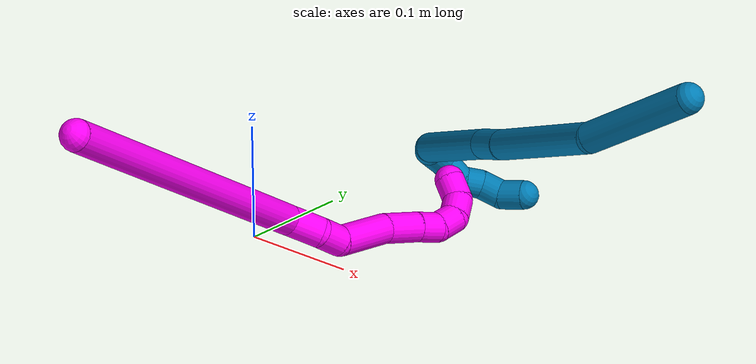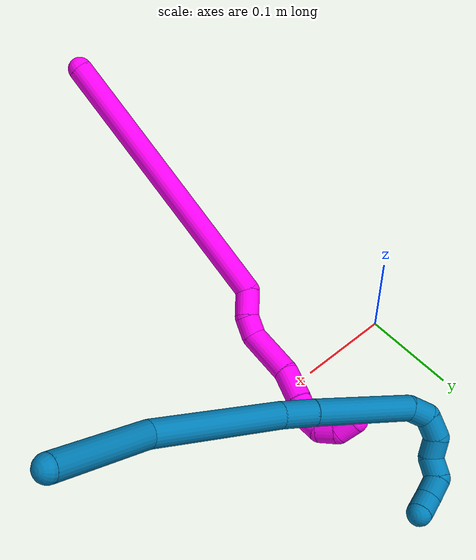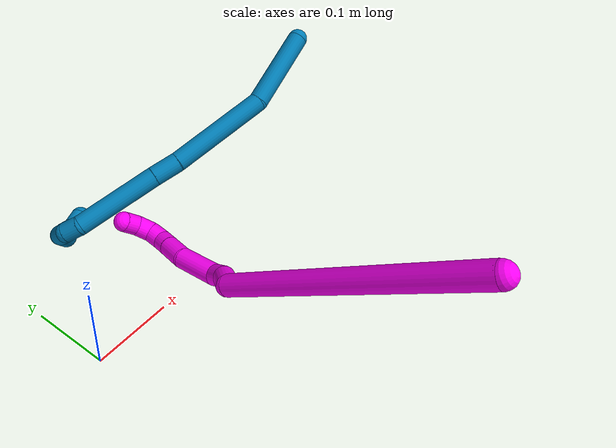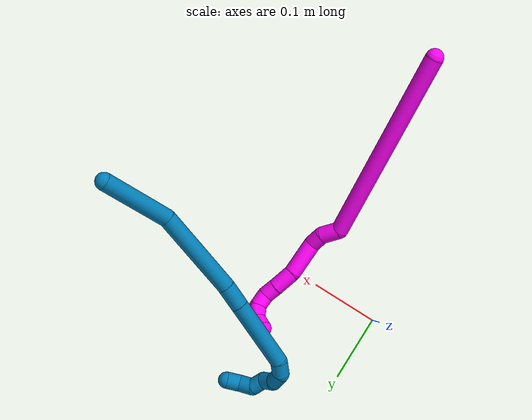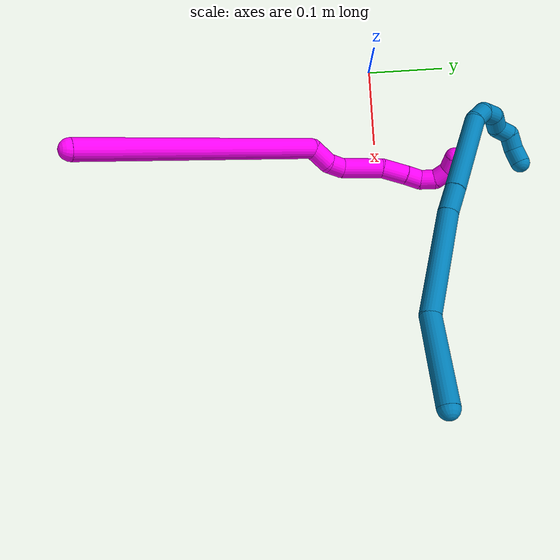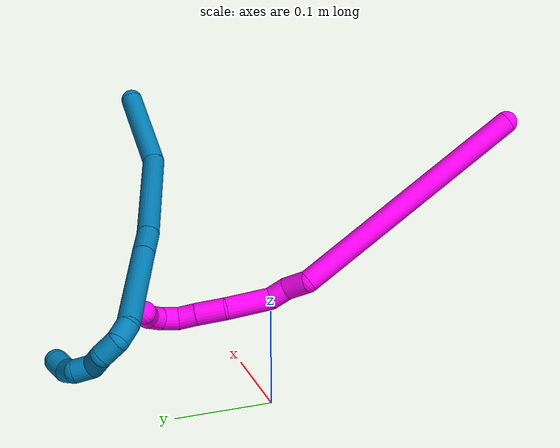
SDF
<sdf version="1.7">
 <world name="default">
  <model name="9">
   <static>0</static>
   <link name="9">
    <collision name="collision-cylinder-e_1_1_4">
     <pose>-0.00485 -0.003652 -0.051204 3.07039 -0.094205 -1.84753</pose>
     <geometry><cylinder><radius>0.0125</radius><length>0.103126</length></cylinder></geometry>
     <surface>
      <friction><ode><mu>1.16</mu><mu2>1.16</mu2><slip1>0</slip1><slip2>0</slip2></ode></friction>
      <contact><ode><kp>1e+06</kp><kd>1</kd><max_vel>0</max_vel><min_depth>0.001</min_depth></ode></contact>
     </surface>
    </collision>
    <visual name="visual-cylinder-e_1_1_4">
     <pose>-0.00485 -0.003652 -0.051204 3.07039 -0.094205 -1.84753</pose>
     <geometry><cylinder><radius>0.0125</radius><length>0.103126</length></cylinder></geometry>
     <material><ambient>0 0.490196 0.709804 1</ambient></material>
    </visual>
    <collision name="collision-cylinder-e_2_4_5">
     <pose>-0.036361 -0.003999 -0.160963 -3.08522 -0.426661 2.88273</pose>
     <geometry><cylinder><radius>0.0125</radius><length>0.128845</length></cylinder></geometry>
     <surface>
      <friction><ode><mu>1.16</mu><mu2>1.16</mu2><slip1>0</slip1><slip2>0</slip2></ode></friction>
      <contact><ode><kp>1e+06</kp><kd>1</kd><max_vel>0</max_vel><min_depth>0.001</min_depth></ode></contact>
     </surface>
    </collision>
    <visual name="visual-cylinder-e_2_4_5">
     <pose>-0.036361 -0.003999 -0.160963 -3.08522 -0.426661 2.88273</pose>
     <geometry><cylinder><radius>0.0125</radius><length>0.128845</length></cylinder></geometry>
     <material><ambient>0 0.490196 0.709804 1</ambient></material>
    </visual>
    <collision name="collision-cylinder-e_3_5_6">
     <pose>-0.071346 0.00106 -0.234192 -3.02257 -0.512983 2.69482</pose>
     <geometry><cylinder><radius>0.0125</radius><length>0.033927</length></cylinder></geometry>
     <surface>
      <friction><ode><mu>1.16</mu><mu2>1.16</mu2><slip1>0</slip1><slip2>0</slip2></ode></friction>
      <contact><ode><kp>1e+06</kp><kd>1</kd><max_vel>0</max_vel><min_depth>0.001</min_depth></ode></contact>
     </surface>
    </collision>
    <visual name="visual-cylinder-e_3_5_6">
     <pose>-0.071346 0.00106 -0.234192 -3.02257 -0.512983 2.69482</pose>
     <geometry><cylinder><radius>0.0125</radius><length>0.033927</length></cylinder></geometry>
     <material><ambient>0 0.490196 0.709804 1</ambient></material>
    </visual>
    <collision name="collision-cylinder-e_4_6_7">
     <pose>-0.103876 0.0096 -0.295483 -2.99706 -0.474635 2.55996</pose>
     <geometry><cylinder><radius>0.0125</radius><length>0.105922</length></cylinder></geometry>
     <surface>
      <friction><ode><mu>1.16</mu><mu2>1.16</mu2><slip1>0</slip1><slip2>0</slip2></ode></friction>
      <contact><ode><kp>1e+06</kp><kd>1</kd><max_vel>0</max_vel><min_depth>0.001</min_depth></ode></contact>
     </surface>
    </collision>
    <visual name="visual-cylinder-e_4_6_7">
     <pose>-0.103876 0.0096 -0.295483 -2.99706 -0.474635 2.55996</pose>
     <geometry><cylinder><radius>0.0125</radius><length>0.105922</length></cylinder></geometry>
     <material><ambient>0 0.490196 0.709804 1</ambient></material>
    </visual>
    <collision name="collision-cylinder-e_5_7_8">
     <pose>-0.13319 0.022093 -0.350125 -2.52342 -0.478619 1.30489</pose>
     <geometry><cylinder><radius>0.0125</radius><length>0.022191</length></cylinder></geometry>
     <surface>
      <friction><ode><mu>1.16</mu><mu2>1.16</mu2><slip1>0</slip1><slip2>0</slip2></ode></friction>
      <contact><ode><kp>1e+06</kp><kd>1</kd><max_vel>0</max_vel><min_depth>0.001</min_depth></ode></contact>
     </surface>
    </collision>
    <visual name="visual-cylinder-e_5_7_8">
     <pose>-0.13319 0.022093 -0.350125 -2.52342 -0.478619 1.30489</pose>
     <geometry><cylinder><radius>0.0125</radius><length>0.022191</length></cylinder></geometry>
     <material><ambient>0 0.490196 0.709804 1</ambient></material>
    </visual>
    <collision name="collision-cylinder-e_6_8_9">
     <pose>-0.139562 0.038592 -0.361448 -1.86732 -0.111439 0.150443</pose>
     <geometry><cylinder><radius>0.0125</radius><length>0.022709</length></cylinder></geometry>
     <surface>
      <friction><ode><mu>1.16</mu><mu2>1.16</mu2><slip1>0</slip1><slip2>0</slip2></ode></friction>
      <contact><ode><kp>1e+06</kp><kd>1</kd><max_vel>0</max_vel><min_depth>0.001</min_depth></ode></contact>
     </surface>
    </collision>
    <visual name="visual-cylinder-e_6_8_9">
     <pose>-0.139562 0.038592 -0.361448 -1.86732 -0.111439 0.150443</pose>
     <geometry><cylinder><radius>0.0125</radius><length>0.022709</length></cylinder></geometry>
     <material><ambient>0 0.490196 0.709804 1</ambient></material>
    </visual>
    <collision name="collision-cylinder-e_7_9_10">
     <pose>-0.136051 0.058878 -0.364555 -1.55081 0.465814 -0.456916</pose>
     <geometry><cylinder><radius>0.0125</radius><length>0.021257</length></cylinder></geometry>
     <surface>
      <friction><ode><mu>1.16</mu><mu2>1.16</mu2><slip1>0</slip1><slip2>0</slip2></ode></friction>
      <contact><ode><kp>1e+06</kp><kd>1</kd><max_vel>0</max_vel><min_depth>0.001</min_depth></ode></contact>
     </surface>
    </collision>
    <visual name="visual-cylinder-e_7_9_10">
     <pose>-0.136051 0.058878 -0.364555 -1.55081 0.465814 -0.456916</pose>
     <geometry><cylinder><radius>0.0125</radius><length>0.021257</length></cylinder></geometry>
     <material><ambient>0 0.490196 0.709804 1</ambient></material>
    </visual>
    <collision name="collision-cylinder-e_8_10_11">
     <pose>-0.133656 0.078091 -0.362818 -1.41294 -0.237155 0.202647</pose>
     <geometry><cylinder><radius>0.0125</radius><length>0.02025</length></cylinder></geometry>
     <surface>
      <friction><ode><mu>1.16</mu><mu2>1.16</mu2><slip1>0</slip1><slip2>0</slip2></ode></friction>
      <contact><ode><kp>1e+06</kp><kd>1</kd><max_vel>0</max_vel><min_depth>0.001</min_depth></ode></contact>
     </surface>
    </collision>
    <visual name="visual-cylinder-e_8_10_11">
     <pose>-0.133656 0.078091 -0.362818 -1.41294 -0.237155 0.202647</pose>
     <geometry><cylinder><radius>0.0125</radius><length>0.02025</length></cylinder></geometry>
     <material><ambient>0 0.490196 0.709804 1</ambient></material>
    </visual>
    <collision name="collision-cylinder-e_9_11_12">
     <pose>-0.132004 0.095695 -0.355897 -0.972532 0.399717 -0.213337</pose>
     <geometry><cylinder><radius>0.0125</radius><length>0.020717</length></cylinder></geometry>
     <surface>
      <friction><ode><mu>1.16</mu><mu2>1.16</mu2><slip1>0</slip1><slip2>0</slip2></ode></friction>
      <contact><ode><kp>1e+06</kp><kd>1</kd><max_vel>0</max_vel><min_depth>0.001</min_depth></ode></contact>
     </surface>
    </collision>
    <visual name="visual-cylinder-e_9_11_12">
     <pose>-0.132004 0.095695 -0.355897 -0.972532 0.399717 -0.213337</pose>
     <geometry><cylinder><radius>0.0125</radius><length>0.020717</length></cylinder></geometry>
     <material><ambient>0 0.490196 0.709804 1</ambient></material>
    </visual>
    <collision name="collision-cylinder-e_10_12_2">
     <pose>-0.126537 0.109009 -0.341618 -0.547521 0.136818 -0.038475</pose>
     <geometry><cylinder><radius>0.0125</radius><length>0.021056</length></cylinder></geometry>
     <surface>
      <friction><ode><mu>1.16</mu><mu2>1.16</mu2><slip1>0</slip1><slip2>0</slip2></ode></friction>
      <contact><ode><kp>1e+06</kp><kd>1</kd><max_vel>0</max_vel><min_depth>0.001</min_depth></ode></contact>
     </surface>
    </collision>
    <visual name="visual-cylinder-e_10_12_2">
     <pose>-0.126537 0.109009 -0.341618 -0.547521 0.136818 -0.038475</pose>
     <geometry><cylinder><radius>0.0125</radius><length>0.021056</length></cylinder></geometry>
     <material><ambient>0 0.490196 0.709804 1</ambient></material>
    </visual>
    <collision name="collision-sphere-2">
     <pose>-0.125101 0.114439 -0.332713 0 -0 0</pose>
     <geometry><sphere><radius>0.0125</radius></sphere></geometry>
     <surface>
      <friction><ode><mu>1.16</mu><mu2>1.16</mu2><slip1>0</slip1><slip2>0</slip2></ode></friction>
      <contact><ode><kp>1e+06</kp><kd>1</kd><max_vel>0</max_vel><min_depth>0.001</min_depth></ode></contact>
     </surface>
    </collision>
    <visual name="visual-sphere-2">
     <pose>-0.125101 0.114439 -0.332713 0 -0 0</pose>
     <geometry><sphere><radius>0.0125</radius></sphere></geometry>
     <material><ambient>0 0.490196 0.709804 1</ambient></material>
    </visual>
    <collision name="collision-sphere-12">
     <pose>-0.127973 0.10358 -0.350523 0 -0 0</pose>
     <geometry><sphere><radius>0.0125</radius></sphere></geometry>
     <surface>
      <friction><ode><mu>1.16</mu><mu2>1.16</mu2><slip1>0</slip1><slip2>0</slip2></ode></friction>
      <contact><ode><kp>1e+06</kp><kd>1</kd><max_vel>0</max_vel><min_depth>0.001</min_depth></ode></contact>
     </surface>
    </collision>
    <visual name="visual-sphere-12">
     <pose>-0.127973 0.10358 -0.350523 0 -0 0</pose>
     <geometry><sphere><radius>0.0125</radius></sphere></geometry>
     <material><ambient>0 0.490196 0.709804 1</ambient></material>
    </visual>
    <collision name="collision-sphere-11">
     <pose>-0.136035 0.087811 -0.361271 0 -0 0</pose>
     <geometry><sphere><radius>0.0125</radius></sphere></geometry>
     <surface>
      <friction><ode><mu>1.16</mu><mu2>1.16</mu2><slip1>0</slip1><slip2>0</slip2></ode></friction>
      <contact><ode><kp>1e+06</kp><kd>1</kd><max_vel>0</max_vel><min_depth>0.001</min_depth></ode></contact>
     </surface>
    </collision>
    <visual name="visual-sphere-11">
     <pose>-0.136035 0.087811 -0.361271 0 -0 0</pose>
     <geometry><sphere><radius>0.0125</radius></sphere></geometry>
     <material><ambient>0 0.490196 0.709804 1</ambient></material>
    </visual>
    <collision name="collision-sphere-10">
     <pose>-0.131277 0.068372 -0.364365 0 -0 0</pose>
     <geometry><sphere><radius>0.0125</radius></sphere></geometry>
     <surface>
      <friction><ode><mu>1.16</mu><mu2>1.16</mu2><slip1>0</slip1><slip2>0</slip2></ode></friction>
      <contact><ode><kp>1e+06</kp><kd>1</kd><max_vel>0</max_vel><min_depth>0.001</min_depth></ode></contact>
     </surface>
    </collision>
    <visual name="visual-sphere-10">
     <pose>-0.131277 0.068372 -0.364365 0 -0 0</pose>
     <geometry><sphere><radius>0.0125</radius></sphere></geometry>
     <material><ambient>0 0.490196 0.709804 1</ambient></material>
    </visual>
    <collision name="collision-sphere-9">
     <pose>-0.140825 0.049384 -0.364745 0 -0 0</pose>
     <geometry><sphere><radius>0.0125</radius></sphere></geometry>
     <surface>
      <friction><ode><mu>1.16</mu><mu2>1.16</mu2><slip1>0</slip1><slip2>0</slip2></ode></friction>
      <contact><ode><kp>1e+06</kp><kd>1</kd><max_vel>0</max_vel><min_depth>0.001</min_depth></ode></contact>
     </surface>
    </collision>
    <visual name="visual-sphere-9">
     <pose>-0.140825 0.049384 -0.364745 0 -0 0</pose>
     <geometry><sphere><radius>0.0125</radius></sphere></geometry>
     <material><ambient>0 0.490196 0.709804 1</ambient></material>
    </visual>
    <collision name="collision-sphere-4">
     <pose>-0.009701 -0.007304 -0.102409 0 -0 0</pose>
     <geometry><sphere><radius>0.0125</radius></sphere></geometry>
     <surface>
      <friction><ode><mu>1.16</mu><mu2>1.16</mu2><slip1>0</slip1><slip2>0</slip2></ode></friction>
      <contact><ode><kp>1e+06</kp><kd>1</kd><max_vel>0</max_vel><min_depth>0.001</min_depth></ode></contact>
     </surface>
    </collision>
    <visual name="visual-sphere-4">
     <pose>-0.009701 -0.007304 -0.102409 0 -0 0</pose>
     <geometry><sphere><radius>0.0125</radius></sphere></geometry>
     <material><ambient>0 0.490196 0.709804 1</ambient></material>
    </visual>
    <collision name="collision-sphere-1">
     <geometry><sphere><radius>0.0125</radius></sphere></geometry>
     <surface>
      <friction><ode><mu>1.16</mu><mu2>1.16</mu2><slip1>0</slip1><slip2>0</slip2></ode></friction>
      <contact><ode><kp>1e+06</kp><kd>1</kd><max_vel>0</max_vel><min_depth>0.001</min_depth></ode></contact>
     </surface>
    </collision>
    <visual name="visual-sphere-1">
     <geometry><sphere><radius>0.0125</radius></sphere></geometry>
     <material><ambient>0 0.490196 0.709804 1</ambient></material>
    </visual>
    <collision name="collision-sphere-8">
     <pose>-0.1383 0.027801 -0.358151 0 -0 0</pose>
     <geometry><sphere><radius>0.0125</radius></sphere></geometry>
     <surface>
      <friction><ode><mu>1.16</mu><mu2>1.16</mu2><slip1>0</slip1><slip2>0</slip2></ode></friction>
      <contact><ode><kp>1e+06</kp><kd>1</kd><max_vel>0</max_vel><min_depth>0.001</min_depth></ode></contact>
     </surface>
    </collision>
    <visual name="visual-sphere-8">
     <pose>-0.1383 0.027801 -0.358151 0 -0 0</pose>
     <geometry><sphere><radius>0.0125</radius></sphere></geometry>
     <material><ambient>0 0.490196 0.709804 1</ambient></material>
    </visual>
    <collision name="collision-sphere-5">
     <pose>-0.063021 -0.000695 -0.219517 0 -0 0</pose>
     <geometry><sphere><radius>0.0125</radius></sphere></geometry>
     <surface>
      <friction><ode><mu>1.16</mu><mu2>1.16</mu2><slip1>0</slip1><slip2>0</slip2></ode></friction>
      <contact><ode><kp>1e+06</kp><kd>1</kd><max_vel>0</max_vel><min_depth>0.001</min_depth></ode></contact>
     </surface>
    </collision>
    <visual name="visual-sphere-5">
     <pose>-0.063021 -0.000695 -0.219517 0 -0 0</pose>
     <geometry><sphere><radius>0.0125</radius></sphere></geometry>
     <material><ambient>0 0.490196 0.709804 1</ambient></material>
    </visual>
    <collision name="collision-sphere-6">
     <pose>-0.079672 0.002815 -0.248868 0 -0 0</pose>
     <geometry><sphere><radius>0.0125</radius></sphere></geometry>
     <surface>
      <friction><ode><mu>1.16</mu><mu2>1.16</mu2><slip1>0</slip1><slip2>0</slip2></ode></friction>
      <contact><ode><kp>1e+06</kp><kd>1</kd><max_vel>0</max_vel><min_depth>0.001</min_depth></ode></contact>
     </surface>
    </collision>
    <visual name="visual-sphere-6">
     <pose>-0.079672 0.002815 -0.248868 0 -0 0</pose>
     <geometry><sphere><radius>0.0125</radius></sphere></geometry>
     <material><ambient>0 0.490196 0.709804 1</ambient></material>
    </visual>
    <collision name="collision-sphere-7">
     <pose>-0.12808 0.016385 -0.342099 0 -0 0</pose>
     <geometry><sphere><radius>0.0125</radius></sphere></geometry>
     <surface>
      <friction><ode><mu>1.16</mu><mu2>1.16</mu2><slip1>0</slip1><slip2>0</slip2></ode></friction>
      <contact><ode><kp>1e+06</kp><kd>1</kd><max_vel>0</max_vel><min_depth>0.001</min_depth></ode></contact>
     </surface>
    </collision>
    <visual name="visual-sphere-7">
     <pose>-0.12808 0.016385 -0.342099 0 -0 0</pose>
     <geometry><sphere><radius>0.0125</radius></sphere></geometry>
     <material><ambient>0 0.490196 0.709804 1</ambient></material>
    </visual>
    <inertial>
     <pose>-0.071462 0.017277 -0.221807 0 -0 0</pose>
     <mass>0.5</mass>
     <inertia>
      <ixx>-0.000265</ixx>
      <ixy>0</ixy>
      <ixz>0</ixz>
      <iyy>0.000314</iyy>
      <iyz>0</iyz>
      <izz>8.4e-05</izz>
     </inertia>
    </inertial>
   </link>
   <pose>0.410344 0.036866 0.220522 -0.745876 0.562877 -0.986915</pose>
  </model>
  <model name="10">
   <static>0</static>
   <link name="10">
    <collision name="collision-cylinder-e_1_1_4">
     <pose>0.013088 0.01439 -0.141892 -3.04052 0.091513 -1.47144</pose>
     <geometry><cylinder><radius>0.0125</radius><length>0.286438</length></cylinder></geometry>
     <surface>
      <friction><ode><mu>1.16</mu><mu2>1.16</mu2><slip1>0</slip1><slip2>0</slip2></ode></friction>
      <contact><ode><kp>1e+06</kp><kd>1</kd><max_vel>0</max_vel><min_depth>0.001</min_depth></ode></contact>
     </surface>
    </collision>
    <visual name="visual-cylinder-e_1_1_4">
     <pose>0.013088 0.01439 -0.141892 -3.04052 0.091513 -1.47144</pose>
     <geometry><cylinder><radius>0.0125</radius><length>0.286438</length></cylinder></geometry>
     <material><ambient>1 0 0.964706 1</ambient></material>
    </visual>
    <collision name="collision-cylinder-e_2_4_5">
     <pose>0.033984 0.02361 -0.294173 2.67976 0.592277 1.82851</pose>
     <geometry><cylinder><radius>0.0125</radius><length>0.027974</length></cylinder></geometry>
     <surface>
      <friction><ode><mu>1.16</mu><mu2>1.16</mu2><slip1>0</slip1><slip2>0</slip2></ode></friction>
      <contact><ode><kp>1e+06</kp><kd>1</kd><max_vel>0</max_vel><min_depth>0.001</min_depth></ode></contact>
     </surface>
    </collision>
    <visual name="visual-cylinder-e_2_4_5">
     <pose>0.033984 0.02361 -0.294173 2.67976 0.592277 1.82851</pose>
     <geometry><cylinder><radius>0.0125</radius><length>0.027974</length></cylinder></geometry>
     <material><ambient>1 0 0.964706 1</ambient></material>
    </visual>
    <collision name="collision-cylinder-e_3_5_6">
     <pose>0.044955 0.017011 -0.314713 3.00184 0.299187 2.2721</pose>
     <geometry><cylinder><radius>0.0125</radius><length>0.021455</length></cylinder></geometry>
     <surface>
      <friction><ode><mu>1.16</mu><mu2>1.16</mu2><slip1>0</slip1><slip2>0</slip2></ode></friction>
      <contact><ode><kp>1e+06</kp><kd>1</kd><max_vel>0</max_vel><min_depth>0.001</min_depth></ode></contact>
     </surface>
    </collision>
    <visual name="visual-cylinder-e_3_5_6">
     <pose>0.044955 0.017011 -0.314713 3.00184 0.299187 2.2721</pose>
     <geometry><cylinder><radius>0.0125</radius><length>0.021455</length></cylinder></geometry>
     <material><ambient>1 0 0.964706 1</ambient></material>
    </visual>
    <collision name="collision-cylinder-e_4_6_7">
     <pose>0.059416 0.024728 -0.346196 -2.73661 0.453056 -1.68622</pose>
     <geometry><cylinder><radius>0.0125</radius><length>0.051627</length></cylinder></geometry>
     <surface>
      <friction><ode><mu>1.16</mu><mu2>1.16</mu2><slip1>0</slip1><slip2>0</slip2></ode></friction>
      <contact><ode><kp>1e+06</kp><kd>1</kd><max_vel>0</max_vel><min_depth>0.001</min_depth></ode></contact>
     </surface>
    </collision>
    <visual name="visual-cylinder-e_4_6_7">
     <pose>0.059416 0.024728 -0.346196 -2.73661 0.453056 -1.68622</pose>
     <geometry><cylinder><radius>0.0125</radius><length>0.051627</length></cylinder></geometry>
     <material><ambient>1 0 0.964706 1</ambient></material>
    </visual>
    <collision name="collision-cylinder-e_5_7_8">
     <pose>0.079852 0.03574 -0.380707 -3.00083 0.601605 -2.69468</pose>
     <geometry><cylinder><radius>0.0125</radius><length>0.032291</length></cylinder></geometry>
     <surface>
      <friction><ode><mu>1.16</mu><mu2>1.16</mu2><slip1>0</slip1><slip2>0</slip2></ode></friction>
      <contact><ode><kp>1e+06</kp><kd>1</kd><max_vel>0</max_vel><min_depth>0.001</min_depth></ode></contact>
     </surface>
    </collision>
    <visual name="visual-cylinder-e_5_7_8">
     <pose>0.079852 0.03574 -0.380707 -3.00083 0.601605 -2.69468</pose>
     <geometry><cylinder><radius>0.0125</radius><length>0.032291</length></cylinder></geometry>
     <material><ambient>1 0 0.964706 1</ambient></material>
    </visual>
    <collision name="collision-cylinder-e_6_8_9">
     <pose>0.094523 0.038137 -0.402273 -3.07852 0.582281 -2.93181</pose>
     <geometry><cylinder><radius>0.0125</radius><length>0.020123</length></cylinder></geometry>
     <surface>
      <friction><ode><mu>1.16</mu><mu2>1.16</mu2><slip1>0</slip1><slip2>0</slip2></ode></friction>
      <contact><ode><kp>1e+06</kp><kd>1</kd><max_vel>0</max_vel><min_depth>0.001</min_depth></ode></contact>
     </surface>
    </collision>
    <visual name="visual-cylinder-e_6_8_9">
     <pose>0.094523 0.038137 -0.402273 -3.07852 0.582281 -2.93181</pose>
     <geometry><cylinder><radius>0.0125</radius><length>0.020123</length></cylinder></geometry>
     <material><ambient>1 0 0.964706 1</ambient></material>
    </visual>
    <collision name="collision-cylinder-e_7_9_10">
     <pose>0.105579 0.043555 -0.417451 -2.51765 0.583332 -1.4993</pose>
     <geometry><cylinder><radius>0.0125</radius><length>0.020051</length></cylinder></geometry>
     <surface>
      <friction><ode><mu>1.16</mu><mu2>1.16</mu2><slip1>0</slip1><slip2>0</slip2></ode></friction>
      <contact><ode><kp>1e+06</kp><kd>1</kd><max_vel>0</max_vel><min_depth>0.001</min_depth></ode></contact>
     </surface>
    </collision>
    <visual name="visual-cylinder-e_7_9_10">
     <pose>0.105579 0.043555 -0.417451 -2.51765 0.583332 -1.4993</pose>
     <geometry><cylinder><radius>0.0125</radius><length>0.020051</length></cylinder></geometry>
     <material><ambient>1 0 0.964706 1</ambient></material>
    </visual>
    <collision name="collision-cylinder-e_8_10_11">
     <pose>0.113393 0.0574 -0.428074 -1.97513 0.231156 -0.348346</pose>
     <geometry><cylinder><radius>0.0125</radius><length>0.020015</length></cylinder></geometry>
     <surface>
      <friction><ode><mu>1.16</mu><mu2>1.16</mu2><slip1>0</slip1><slip2>0</slip2></ode></friction>
      <contact><ode><kp>1e+06</kp><kd>1</kd><max_vel>0</max_vel><min_depth>0.001</min_depth></ode></contact>
     </surface>
    </collision>
    <visual name="visual-cylinder-e_8_10_11">
     <pose>0.113393 0.0574 -0.428074 -1.97513 0.231156 -0.348346</pose>
     <geometry><cylinder><radius>0.0125</radius><length>0.020015</length></cylinder></geometry>
     <material><ambient>1 0 0.964706 1</ambient></material>
    </visual>
    <collision name="collision-cylinder-e_9_11_2">
     <pose>0.114579 0.076274 -0.431095 -1.48921 -0.11081 0.102135</pose>
     <geometry><cylinder><radius>0.0125</radius><length>0.020025</length></cylinder></geometry>
     <surface>
      <friction><ode><mu>1.16</mu><mu2>1.16</mu2><slip1>0</slip1><slip2>0</slip2></ode></friction>
      <contact><ode><kp>1e+06</kp><kd>1</kd><max_vel>0</max_vel><min_depth>0.001</min_depth></ode></contact>
     </surface>
    </collision>
    <visual name="visual-cylinder-e_9_11_2">
     <pose>0.114579 0.076274 -0.431095 -1.48921 -0.11081 0.102135</pose>
     <geometry><cylinder><radius>0.0125</radius><length>0.020025</length></cylinder></geometry>
     <material><ambient>1 0 0.964706 1</ambient></material>
    </visual>
    <collision name="collision-sphere-2">
     <pose>0.113472 0.086192 -0.430284 0 -0 0</pose>
     <geometry><sphere><radius>0.0125</radius></sphere></geometry>
     <surface>
      <friction><ode><mu>1.16</mu><mu2>1.16</mu2><slip1>0</slip1><slip2>0</slip2></ode></friction>
      <contact><ode><kp>1e+06</kp><kd>1</kd><max_vel>0</max_vel><min_depth>0.001</min_depth></ode></contact>
     </surface>
    </collision>
    <visual name="visual-sphere-2">
     <pose>0.113472 0.086192 -0.430284 0 -0 0</pose>
     <geometry><sphere><radius>0.0125</radius></sphere></geometry>
     <material><ambient>1 0 0.964706 1</ambient></material>
    </visual>
    <collision name="collision-sphere-11">
     <pose>0.115686 0.066356 -0.431906 0 -0 0</pose>
     <geometry><sphere><radius>0.0125</radius></sphere></geometry>
     <surface>
      <friction><ode><mu>1.16</mu><mu2>1.16</mu2><slip1>0</slip1><slip2>0</slip2></ode></friction>
      <contact><ode><kp>1e+06</kp><kd>1</kd><max_vel>0</max_vel><min_depth>0.001</min_depth></ode></contact>
     </surface>
    </collision>
    <visual name="visual-sphere-11">
     <pose>0.115686 0.066356 -0.431906 0 -0 0</pose>
     <geometry><sphere><radius>0.0125</radius></sphere></geometry>
     <material><ambient>1 0 0.964706 1</ambient></material>
    </visual>
    <collision name="collision-sphere-10">
     <pose>0.111101 0.048444 -0.424242 0 -0 0</pose>
     <geometry><sphere><radius>0.0125</radius></sphere></geometry>
     <surface>
      <friction><ode><mu>1.16</mu><mu2>1.16</mu2><slip1>0</slip1><slip2>0</slip2></ode></friction>
      <contact><ode><kp>1e+06</kp><kd>1</kd><max_vel>0</max_vel><min_depth>0.001</min_depth></ode></contact>
     </surface>
    </collision>
    <visual name="visual-sphere-10">
     <pose>0.111101 0.048444 -0.424242 0 -0 0</pose>
     <geometry><sphere><radius>0.0125</radius></sphere></geometry>
     <material><ambient>1 0 0.964706 1</ambient></material>
    </visual>
    <collision name="collision-sphere-9">
     <pose>0.100057 0.038666 -0.41066 0 -0 0</pose>
     <geometry><sphere><radius>0.0125</radius></sphere></geometry>
     <surface>
      <friction><ode><mu>1.16</mu><mu2>1.16</mu2><slip1>0</slip1><slip2>0</slip2></ode></friction>
      <contact><ode><kp>1e+06</kp><kd>1</kd><max_vel>0</max_vel><min_depth>0.001</min_depth></ode></contact>
     </surface>
    </collision>
    <visual name="visual-sphere-9">
     <pose>0.100057 0.038666 -0.41066 0 -0 0</pose>
     <geometry><sphere><radius>0.0125</radius></sphere></geometry>
     <material><ambient>1 0 0.964706 1</ambient></material>
    </visual>
    <collision name="collision-sphere-4">
     <pose>0.026176 0.028781 -0.283784 0 -0 0</pose>
     <geometry><sphere><radius>0.0125</radius></sphere></geometry>
     <surface>
      <friction><ode><mu>1.16</mu><mu2>1.16</mu2><slip1>0</slip1><slip2>0</slip2></ode></friction>
      <contact><ode><kp>1e+06</kp><kd>1</kd><max_vel>0</max_vel><min_depth>0.001</min_depth></ode></contact>
     </surface>
    </collision>
    <visual name="visual-sphere-4">
     <pose>0.026176 0.028781 -0.283784 0 -0 0</pose>
     <geometry><sphere><radius>0.0125</radius></sphere></geometry>
     <material><ambient>1 0 0.964706 1</ambient></material>
    </visual>
    <collision name="collision-sphere-1">
     <geometry><sphere><radius>0.0125</radius></sphere></geometry>
     <surface>
      <friction><ode><mu>1.16</mu><mu2>1.16</mu2><slip1>0</slip1><slip2>0</slip2></ode></friction>
      <contact><ode><kp>1e+06</kp><kd>1</kd><max_vel>0</max_vel><min_depth>0.001</min_depth></ode></contact>
     </surface>
    </collision>
    <visual name="visual-sphere-1">
     <geometry><sphere><radius>0.0125</radius></sphere></geometry>
     <material><ambient>1 0 0.964706 1</ambient></material>
    </visual>
    <collision name="collision-sphere-8">
     <pose>0.08899 0.037607 -0.393886 0 -0 0</pose>
     <geometry><sphere><radius>0.0125</radius></sphere></geometry>
     <surface>
      <friction><ode><mu>1.16</mu><mu2>1.16</mu2><slip1>0</slip1><slip2>0</slip2></ode></friction>
      <contact><ode><kp>1e+06</kp><kd>1</kd><max_vel>0</max_vel><min_depth>0.001</min_depth></ode></contact>
     </surface>
    </collision>
    <visual name="visual-sphere-8">
     <pose>0.08899 0.037607 -0.393886 0 -0 0</pose>
     <geometry><sphere><radius>0.0125</radius></sphere></geometry>
     <material><ambient>1 0 0.964706 1</ambient></material>
    </visual>
    <collision name="collision-sphere-5">
     <pose>0.041793 0.018439 -0.304562 0 -0 0</pose>
     <geometry><sphere><radius>0.0125</radius></sphere></geometry>
     <surface>
      <friction><ode><mu>1.16</mu><mu2>1.16</mu2><slip1>0</slip1><slip2>0</slip2></ode></friction>
      <contact><ode><kp>1e+06</kp><kd>1</kd><max_vel>0</max_vel><min_depth>0.001</min_depth></ode></contact>
     </surface>
    </collision>
    <visual name="visual-sphere-5">
     <pose>0.041793 0.018439 -0.304562 0 -0 0</pose>
     <geometry><sphere><radius>0.0125</radius></sphere></geometry>
     <material><ambient>1 0 0.964706 1</ambient></material>
    </visual>
    <collision name="collision-sphere-6">
     <pose>0.048117 0.015583 -0.324864 0 -0 0</pose>
     <geometry><sphere><radius>0.0125</radius></sphere></geometry>
     <surface>
      <friction><ode><mu>1.16</mu><mu2>1.16</mu2><slip1>0</slip1><slip2>0</slip2></ode></friction>
      <contact><ode><kp>1e+06</kp><kd>1</kd><max_vel>0</max_vel><min_depth>0.001</min_depth></ode></contact>
     </surface>
    </collision>
    <visual name="visual-sphere-6">
     <pose>0.048117 0.015583 -0.324864 0 -0 0</pose>
     <geometry><sphere><radius>0.0125</radius></sphere></geometry>
     <material><ambient>1 0 0.964706 1</ambient></material>
    </visual>
    <collision name="collision-sphere-7">
     <pose>0.070715 0.033872 -0.367528 0 -0 0</pose>
     <geometry><sphere><radius>0.0125</radius></sphere></geometry>
     <surface>
      <friction><ode><mu>1.16</mu><mu2>1.16</mu2><slip1>0</slip1><slip2>0</slip2></ode></friction>
      <contact><ode><kp>1e+06</kp><kd>1</kd><max_vel>0</max_vel><min_depth>0.001</min_depth></ode></contact>
     </surface>
    </collision>
    <visual name="visual-sphere-7">
     <pose>0.070715 0.033872 -0.367528 0 -0 0</pose>
     <geometry><sphere><radius>0.0125</radius></sphere></geometry>
     <material><ambient>1 0 0.964706 1</ambient></material>
    </visual>
    <inertial>
     <pose>0.039786 0.02379 -0.238914 0 -0 0</pose>
     <mass>0.5</mass>
     <inertia>
      <ixx>-0.001764</ixx>
      <ixy>0</ixy>
      <ixz>0</ixz>
      <iyy>-0.002122</iyy>
      <iyz>0</iyz>
      <izz>-0.000431</izz>
     </inertia>
    </inertial>
   </link>
   <pose>0.131782 -0.324572 0.229099 0.75188 -0.495732 0.550059</pose>
  </model>
 </world>
</sdf>
